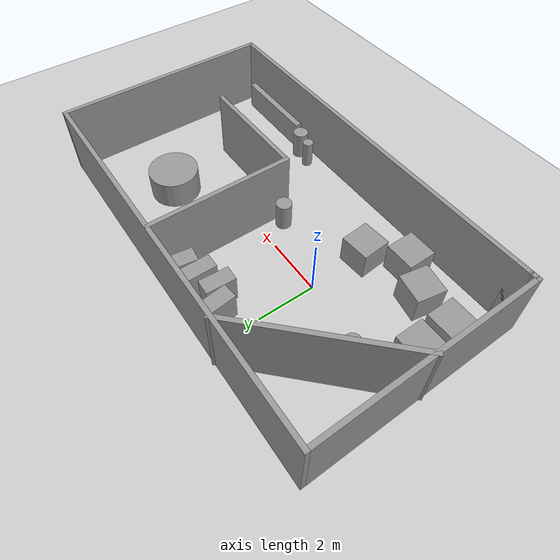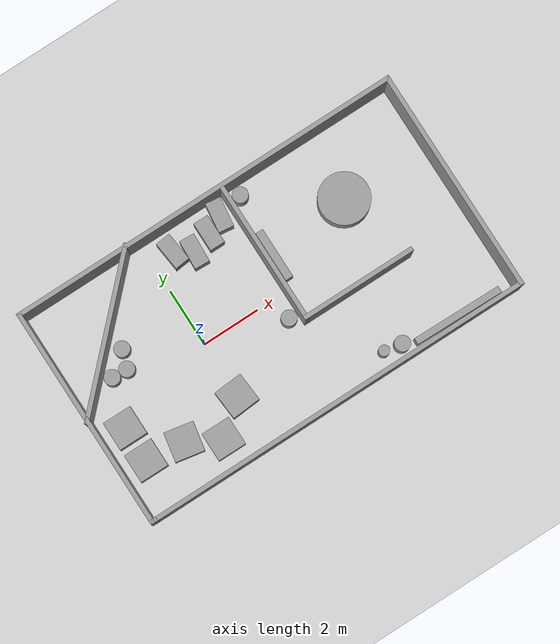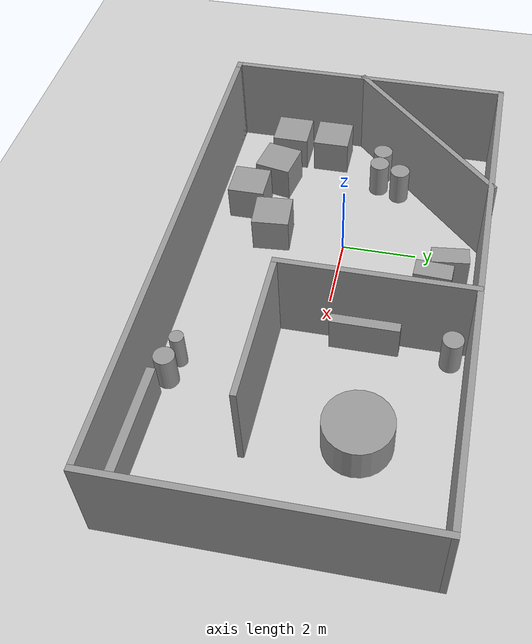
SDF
<sdf version="1.7">
 <world name="default">
  <light name="sun" type="directional">
   <pose>0 0 10 0 -0 0</pose>
   <diffuse>0.8 0.8 0.8 1</diffuse>
   <specular>0.2 0.2 0.2 1</specular>
   <attenuation>
    <range>1000</range>
    <constant>0.9</constant>
    <linear>0.01</linear>
    <quadratic>0.001</quadratic>
   </attenuation>
   <direction>-0.5 0.1 -0.9</direction>
   <spot><inner_angle>0</inner_angle><outer_angle>0</outer_angle><falloff>0</falloff></spot>
  </light>
  <model name="ground_plane">
   <static>1</static>
   <link name="link">
    <collision name="collision">
     <geometry><plane><normal>0 0 1</normal><size>100 100</size></plane></geometry>
     <surface>
      <contact><collide_bitmask>65535</collide_bitmask></contact>
      <friction><ode><mu>100</mu><mu2>50</mu2></ode></friction>
     </surface>
    </collision>
    <visual name="visual">
     <cast_shadows>0</cast_shadows>
     <geometry><plane><normal>0 0 1</normal><size>100 100</size></plane></geometry>
     <material>
      <script><uri>file://media/materials/scripts/gazebo.material</uri><name>Gazebo/Grey</name></script>
     </material>
    </visual>
   </link>
  </model>
  <gravity>0 0 -9.8</gravity>
  <magnetic_field>6e-06 2.3e-05 -4.2e-05</magnetic_field>
  <atmosphere type="adiabatic"/>
  <physics type="ode">
   <max_step_size>0.001</max_step_size>
   <real_time_factor>1</real_time_factor>
   <real_time_update_rate>1000</real_time_update_rate>
  </physics>
  <scene><ambient>0.4 0.4 0.4 1</ambient><background>0.7 0.7 0.7 1</background><shadows>1</shadows></scene>
  <spherical_coordinates>
   <surface_model>EARTH_WGS84</surface_model>
   <latitude_deg>0</latitude_deg>
   <longitude_deg>0</longitude_deg>
   <elevation>0</elevation>
   <heading_deg>0</heading_deg>
  </spherical_coordinates>
  <model name="Untitled">
   <pose>2.38903 -0.04105 0 0 -0 0</pose>
   <link name="Wall_10">
    <collision name="Wall_10_Collision">
     <geometry><box><size>5 0.15 2.5</size></box></geometry>
     <pose>0 0 1.25 0 -0 0</pose>
    </collision>
    <visual name="Wall_10_Visual">
     <pose>0 0 1.25 0 -0 0</pose>
     <geometry><box><size>5 0.15 2.5</size></box></geometry>
     <material>
      <script><uri>file://media/materials/scripts/gazebo.material</uri><name>Gazebo/Grey</name></script>
      <ambient>1 1 1 1</ambient>
     </material>
     <meta><layer>0</layer></meta>
    </visual>
    <pose>0.660432 1.31947 0 0 -0 -1.5708</pose>
   </link>
   <link name="Wall_13">
    <collision name="Wall_13_Collision">
     <geometry><box><size>4 0.15 2.5</size></box></geometry>
     <pose>0 0 1.25 0 -0 0</pose>
    </collision>
    <visual name="Wall_13_Visual">
     <pose>0 0 1.25 0 -0 0</pose>
     <geometry><box><size>4 0.15 2.5</size></box></geometry>
     <material>
      <script><uri>file://media/materials/scripts/gazebo.material</uri><name>Gazebo/Grey</name></script>
      <ambient>1 1 1 1</ambient>
     </material>
     <meta><layer>0</layer></meta>
    </visual>
    <pose>2.58543 -1.10553 0 0 -0 0</pose>
   </link>
   <link name="Wall_2">
    <collision name="Wall_2_Collision">
     <geometry><box><size>13.5 0.15 2.5</size></box></geometry>
     <pose>0 0 1.25 0 -0 0</pose>
    </collision>
    <visual name="Wall_2_Visual">
     <pose>0 0 1.25 0 -0 0</pose>
     <geometry><box><size>13.5 0.15 2.5</size></box></geometry>
     <material>
      <script><uri>file://media/materials/scripts/gazebo.material</uri><name>Gazebo/Grey</name></script>
      <ambient>1 1 1 1</ambient>
     </material>
     <meta><layer>0</layer></meta>
    </visual>
    <pose>0.155432 -3.83553 0 0 -0 0</pose>
   </link>
   <link name="Wall_3">
    <collision name="Wall_3_Collision">
     <geometry><box><size>7.75 0.15 2.5</size></box></geometry>
     <pose>0 0 1.25 0 -0 0</pose>
    </collision>
    <visual name="Wall_3_Visual">
     <pose>0 0 1.25 0 -0 0</pose>
     <geometry><box><size>7.75 0.15 2.5</size></box></geometry>
     <material>
      <script><uri>file://media/materials/scripts/gazebo.material</uri><name>Gazebo/Grey</name></script>
      <ambient>1 1 1 1</ambient>
     </material>
     <meta><layer>0</layer></meta>
    </visual>
    <pose>6.83043 -0.035533 0 0 -0 1.5708</pose>
   </link>
   <link name="Wall_4">
    <collision name="Wall_4_Collision">
     <geometry><box><size>13.75 0.15 2.5</size></box></geometry>
     <pose>0 0 1.25 0 -0 0</pose>
    </collision>
    <visual name="Wall_4_Visual">
     <pose>0 0 1.25 0 -0 0</pose>
     <geometry><box><size>13.75 0.15 2.5</size></box></geometry>
     <material>
      <script><uri>file://media/materials/scripts/gazebo.material</uri><name>Gazebo/Grey</name></script>
      <ambient>1 1 1 1</ambient>
     </material>
     <meta><layer>0</layer></meta>
    </visual>
    <pose>0.030432 3.76447 0 0 -0 3.14159</pose>
   </link>
   <link name="Wall_5">
    <collision name="Wall_5_Collision">
     <geometry><box><size>7.75 0.15 2.5</size></box></geometry>
     <pose>0 0 1.25 0 -0 0</pose>
    </collision>
    <visual name="Wall_5_Visual">
     <pose>0 0 1.25 0 -0 0</pose>
     <geometry><box><size>7.75 0.15 2.5</size></box></geometry>
     <material>
      <script><uri>file://media/materials/scripts/gazebo.material</uri><name>Gazebo/Grey</name></script>
      <ambient>1 1 1 1</ambient>
     </material>
     <meta><layer>0</layer></meta>
    </visual>
    <pose>-6.76957 -0.035533 0 0 -0 -1.5708</pose>
   </link>
   <link name="Wall_6">
    <collision name="Wall_6_Collision">
     <geometry><box><size>0.75 0.15 2.5</size></box></geometry>
     <pose>0 0 1.25 0 -0 0</pose>
    </collision>
    <visual name="Wall_6_Visual">
     <pose>0 0 1.25 0 -0 0</pose>
     <geometry><box><size>0.75 0.15 2.5</size></box></geometry>
     <material>
      <script><uri>file://media/materials/scripts/gazebo.material</uri><name>Gazebo/Grey</name></script>
      <ambient>1 1 1 1</ambient>
     </material>
     <meta><layer>0</layer></meta>
    </visual>
    <pose>-6.46957 -3.83553 0 0 -0 0</pose>
   </link>
   <link name="Wall_8">
    <collision name="Wall_8_Collision">
     <geometry><box><size>5.75 0.15 2.5</size></box></geometry>
     <pose>0 0 1.25 0 -0 0</pose>
    </collision>
    <visual name="Wall_8_Visual">
     <pose>0 0 1.25 0 -0 0</pose>
     <geometry><box><size>5.75 0.15 2.5</size></box></geometry>
     <material>
      <script><uri>file://media/materials/scripts/gazebo.material</uri><name>Gazebo/Grey</name></script>
      <ambient>1 1 1 1</ambient>
     </material>
     <meta><layer>0</layer></meta>
    </visual>
    <pose>-4.81947 1.82457 0 0 -0 -2.35619</pose>
   </link>
   <static>1</static>
  </model>
  <model name="unit_box">
   <pose>-3.53946 -0.919895 0.499995 -1e-05 -0 -0</pose>
   <link name="link">
    <inertial>
     <mass>1</mass>
     <inertia>
      <ixx>0.166667</ixx>
      <ixy>0</ixy>
      <ixz>0</ixz>
      <iyy>0.166667</iyy>
      <iyz>0</iyz>
      <izz>0.166667</izz>
     </inertia>
    </inertial>
    <collision name="collision"><geometry><box><size>1 1 1</size></box></geometry></collision>
    <visual name="visual">
     <geometry><box><size>1 1 1</size></box></geometry>
     <material>
      <script><name>Gazebo/Grey</name><uri>file://media/materials/scripts/gazebo.material</uri></script>
     </material>
    </visual>
   </link>
  </model>
  <model name="unit_box_0">
   <pose>-3.53308 -2.12592 0.499995 0 1e-05 0</pose>
   <link name="link">
    <inertial>
     <mass>1</mass>
     <inertia>
      <ixx>0.166667</ixx>
      <ixy>0</ixy>
      <ixz>0</ixz>
      <iyy>0.166667</iyy>
      <iyz>0</iyz>
      <izz>0.166667</izz>
     </inertia>
    </inertial>
    <collision name="collision"><geometry><box><size>1 1 1</size></box></geometry></collision>
    <visual name="visual">
     <geometry><box><size>1 1 1</size></box></geometry>
     <material>
      <script><name>Gazebo/Grey</name><uri>file://media/materials/scripts/gazebo.material</uri></script>
     </material>
    </visual>
   </link>
  </model>
  <model name="unit_box_1">
   <pose>-2.21328 -2.28076 0.499995 1e-05 -0 -0.184325</pose>
   <link name="link">
    <inertial>
     <mass>1</mass>
     <inertia>
      <ixx>0.166667</ixx>
      <ixy>0</ixy>
      <ixz>0</ixz>
      <iyy>0.166667</iyy>
      <iyz>0</iyz>
      <izz>0.166667</izz>
     </inertia>
    </inertial>
    <collision name="collision"><geometry><box><size>1 1 1</size></box></geometry></collision>
    <visual name="visual">
     <geometry><box><size>1 1 1</size></box></geometry>
     <material>
      <script><name>Gazebo/Grey</name><uri>file://media/materials/scripts/gazebo.material</uri></script>
     </material>
    </visual>
   </link>
  </model>
  <model name="unit_box_2">
   <pose>-1.12407 -2.87751 0.499995 0 1e-05 0</pose>
   <link name="link">
    <inertial>
     <mass>1</mass>
     <inertia>
      <ixx>0.166667</ixx>
      <ixy>0</ixy>
      <ixz>0</ixz>
      <iyy>0.166667</iyy>
      <iyz>0</iyz>
      <izz>0.166667</izz>
     </inertia>
    </inertial>
    <collision name="collision"><geometry><box><size>1 1 1</size></box></geometry></collision>
    <visual name="visual">
     <geometry><box><size>1 1 1</size></box></geometry>
     <material>
      <script><name>Gazebo/Grey</name><uri>file://media/materials/scripts/gazebo.material</uri></script>
     </material>
    </visual>
   </link>
  </model>
  <model name="unit_box_3">
   <pose>-0.050352 -1.979 0.5 0 -0 0.075767</pose>
   <link name="link">
    <inertial>
     <mass>1</mass>
     <inertia>
      <ixx>0.166667</ixx>
      <ixy>0</ixy>
      <ixz>0</ixz>
      <iyy>0.166667</iyy>
      <iyz>0</iyz>
      <izz>0.166667</izz>
     </inertia>
    </inertial>
    <collision name="collision"><geometry><box><size>1 1 1</size></box></geometry></collision>
    <visual name="visual">
     <geometry><box><size>1 1 1</size></box></geometry>
     <material>
      <script><name>Gazebo/Grey</name><uri>file://media/materials/scripts/gazebo.material</uri></script>
     </material>
    </visual>
   </link>
  </model>
  <model name="unit_cylinder">
   <pose>6.15876 1.41936 0.499995 5e-06 5e-06 -1e-06</pose>
   <link name="link">
    <inertial>
     <mass>1</mass>
     <inertia><ixx>0.145833</ixx><ixy>0</ixy><ixz>0</ixz><iyy>0.145833</iyy><iyz>0</iyz><izz>0.125</izz></inertia>
    </inertial>
    <collision name="collision">
     <geometry><cylinder><radius>0.8566</radius><length>1</length></cylinder></geometry>
    </collision>
    <visual name="visual">
     <geometry><cylinder><radius>0.8566</radius><length>1</length></cylinder></geometry>
     <material>
      <script><name>Gazebo/Grey</name><uri>file://media/materials/scripts/gazebo.material</uri></script>
     </material>
    </visual>
   </link>
  </model>
  <model name="unit_box_4">
   <pose>1.29531 2.57515 0.5 0 -0 -0.047638</pose>
   <link name="link">
    <inertial>
     <mass>1</mass>
     <inertia>
      <ixx>0.166667</ixx>
      <ixy>0</ixy>
      <ixz>0</ixz>
      <iyy>0.166667</iyy>
      <iyz>0</iyz>
      <izz>0.166667</izz>
     </inertia>
    </inertial>
    <collision name="collision"><geometry><box><size>0.520195 1 1</size></box></geometry></collision>
    <visual name="visual">
     <geometry><box><size>0.520195 1 1</size></box></geometry>
     <material>
      <script><name>Gazebo/Grey</name><uri>file://media/materials/scripts/gazebo.material</uri></script>
     </material>
    </visual>
   </link>
  </model>
  <model name="unit_box_4_clone">
   <pose>2.57885 3.11133 0.5 0 -0 -0.128343</pose>
   <link name="link">
    <inertial>
     <mass>1</mass>
     <inertia>
      <ixx>0.166667</ixx>
      <ixy>0</ixy>
      <ixz>0</ixz>
      <iyy>0.166667</iyy>
      <iyz>0</iyz>
      <izz>0.166667</izz>
     </inertia>
    </inertial>
    <collision name="collision"><geometry><box><size>0.520195 1 1</size></box></geometry></collision>
    <visual name="visual">
     <geometry><box><size>0.520195 1 1</size></box></geometry>
     <material>
      <script><name>Gazebo/Grey</name><uri>file://media/materials/scripts/gazebo.material</uri></script>
     </material>
    </visual>
   </link>
  </model>
  <model name="unit_box_4_clone_0">
   <pose>1.99515 2.81349 0.5 0 -0 0</pose>
   <link name="link">
    <inertial>
     <mass>1</mass>
     <inertia>
      <ixx>0.166667</ixx>
      <ixy>0</ixy>
      <ixz>0</ixz>
      <iyy>0.166667</iyy>
      <iyz>0</iyz>
      <izz>0.166667</izz>
     </inertia>
    </inertial>
    <collision name="collision"><geometry><box><size>0.520195 1 1</size></box></geometry></collision>
    <visual name="visual">
     <geometry><box><size>0.520195 1 1</size></box></geometry>
     <material>
      <script><name>Gazebo/Grey</name><uri>file://media/materials/scripts/gazebo.material</uri></script>
     </material>
    </visual>
   </link>
  </model>
  <model name="unit_box_4_clone_1">
   <pose>0.716017 2.94618 0.5 0 -0 0.111814</pose>
   <link name="link">
    <inertial>
     <mass>1</mass>
     <inertia>
      <ixx>0.166667</ixx>
      <ixy>0</ixy>
      <ixz>0</ixz>
      <iyy>0.166667</iyy>
      <iyz>0</iyz>
      <izz>0.166667</izz>
     </inertia>
    </inertial>
    <collision name="collision"><geometry><box><size>0.520195 1 1</size></box></geometry></collision>
    <visual name="visual">
     <geometry><box><size>0.520195 1 1</size></box></geometry>
     <material>
      <script><name>Gazebo/Grey</name><uri>file://media/materials/scripts/gazebo.material</uri></script>
     </material>
    </visual>
   </link>
  </model>
  <model name="unit_cylinder_0">
   <pose>-2.49159 0.611293 0.499992 1e-06 -1e-06 0.000279</pose>
   <link name="link">
    <inertial>
     <mass>1</mass>
     <inertia><ixx>0.145833</ixx><ixy>0</ixy><ixz>0</ixz><iyy>0.145833</iyy><iyz>0</iyz><izz>0.125</izz></inertia>
    </inertial>
    <collision name="collision">
     <geometry><cylinder><radius>0.26626</radius><length>1</length></cylinder></geometry>
    </collision>
    <visual name="visual">
     <geometry><cylinder><radius>0.26626</radius><length>1</length></cylinder></geometry>
     <material>
      <script><name>Gazebo/Grey</name><uri>file://media/materials/scripts/gazebo.material</uri></script>
     </material>
    </visual>
   </link>
  </model>
  <model name="unit_cylinder_0_clone">
   <pose>-2.28142 1.22516 0.499999 -0 -0 -0</pose>
   <link name="link">
    <inertial>
     <mass>1</mass>
     <inertia><ixx>0.145833</ixx><ixy>0</ixy><ixz>0</ixz><iyy>0.145833</iyy><iyz>0</iyz><izz>0.125</izz></inertia>
    </inertial>
    <collision name="collision">
     <geometry><cylinder><radius>0.26626</radius><length>1</length></cylinder></geometry>
    </collision>
    <visual name="visual">
     <geometry><cylinder><radius>0.26626</radius><length>1</length></cylinder></geometry>
     <material>
      <script><name>Gazebo/Grey</name><uri>file://media/materials/scripts/gazebo.material</uri></script>
     </material>
    </visual>
   </link>
  </model>
  <model name="unit_cylinder_0_clone_0">
   <pose>-3.02369 0.634354 0.499994 -0 -0 -5.7e-05</pose>
   <link name="link">
    <inertial>
     <mass>1</mass>
     <inertia><ixx>0.145833</ixx><ixy>0</ixy><ixz>0</ixz><iyy>0.145833</iyy><iyz>0</iyz><izz>0.125</izz></inertia>
    </inertial>
    <collision name="collision">
     <geometry><cylinder><radius>0.26626</radius><length>1</length></cylinder></geometry>
    </collision>
    <visual name="visual">
     <geometry><cylinder><radius>0.26626</radius><length>1</length></cylinder></geometry>
     <material>
      <script><name>Gazebo/Grey</name><uri>file://media/materials/scripts/gazebo.material</uri></script>
     </material>
    </visual>
   </link>
  </model>
  <model name="unit_cylinder_0_clone_1">
   <pose>3.46565 3.28806 0.499998 -1e-06 1e-06 0.000279</pose>
   <link name="link">
    <inertial>
     <mass>1</mass>
     <inertia><ixx>0.145833</ixx><ixy>0</ixy><ixz>0</ixz><iyy>0.145833</iyy><iyz>0</iyz><izz>0.125</izz></inertia>
    </inertial>
    <collision name="collision">
     <geometry><cylinder><radius>0.26626</radius><length>1</length></cylinder></geometry>
    </collision>
    <visual name="visual">
     <geometry><cylinder><radius>0.26626</radius><length>1</length></cylinder></geometry>
     <material>
      <script><name>Gazebo/Grey</name><uri>file://media/materials/scripts/gazebo.material</uri></script>
     </material>
    </visual>
   </link>
  </model>
  <model name="unit_cylinder_0_clone_2">
   <pose>2.65149 -0.805405 0.499992 2e-06 -1e-06 0.000279</pose>
   <link name="link">
    <inertial>
     <mass>1</mass>
     <inertia><ixx>0.145833</ixx><ixy>0</ixy><ixz>0</ixz><iyy>0.145833</iyy><iyz>0</iyz><izz>0.125</izz></inertia>
    </inertial>
    <collision name="collision">
     <geometry><cylinder><radius>0.26626</radius><length>1</length></cylinder></geometry>
    </collision>
    <visual name="visual">
     <geometry><cylinder><radius>0.26626</radius><length>1</length></cylinder></geometry>
     <material>
      <script><name>Gazebo/Grey</name><uri>file://media/materials/scripts/gazebo.material</uri></script>
     </material>
    </visual>
   </link>
  </model>
  <model name="unit_box_5">
   <pose>3.3382 1.11703 0.499995 -5e-06 -0 -0.000423</pose>
   <link name="link">
    <inertial>
     <mass>1</mass>
     <inertia>
      <ixx>0.166667</ixx>
      <ixy>0</ixy>
      <ixz>0</ixz>
      <iyy>0.166667</iyy>
      <iyz>0</iyz>
      <izz>0.166667</izz>
     </inertia>
    </inertial>
    <collision name="collision"><geometry><box><size>0.265614 1.76117 1</size></box></geometry></collision>
    <visual name="visual">
     <geometry><box><size>0.265614 1.76117 1</size></box></geometry>
     <material>
      <script><name>Gazebo/Grey</name><uri>file://media/materials/scripts/gazebo.material</uri></script>
     </material>
    </visual>
   </link>
  </model>
  <model name="unit_box_6">
   <pose>7.15463 -3.6112 0.49979 5e-06 -0.000136 -0.013301</pose>
   <link name="link">
    <inertial>
     <mass>1</mass>
     <inertia>
      <ixx>0.166667</ixx>
      <ixy>0</ixy>
      <ixz>0</ixz>
      <iyy>0.166667</iyy>
      <iyz>0</iyz>
      <izz>0.166667</izz>
     </inertia>
    </inertial>
    <collision name="collision"><geometry><box><size>3.10923 0.22544 1</size></box></geometry></collision>
    <visual name="visual">
     <geometry><box><size>3.10923 0.22544 1</size></box></geometry>
     <material>
      <script><name>Gazebo/Grey</name><uri>file://media/materials/scripts/gazebo.material</uri></script>
     </material>
    </visual>
   </link>
  </model>
  <model name="unit_cylinder_0_clone_2_clone">
   <pose>5.20792 -3.40691 0.499992 1e-06 -1e-06 0.000279</pose>
   <link name="link">
    <inertial>
     <mass>1</mass>
     <inertia><ixx>0.145833</ixx><ixy>0</ixy><ixz>0</ixz><iyy>0.145833</iyy><iyz>0</iyz><izz>0.125</izz></inertia>
    </inertial>
    <collision name="collision">
     <geometry><cylinder><radius>0.26626</radius><length>1</length></cylinder></geometry>
    </collision>
    <visual name="visual">
     <geometry><cylinder><radius>0.26626</radius><length>1</length></cylinder></geometry>
     <material>
      <script><name>Gazebo/Grey</name><uri>file://media/materials/scripts/gazebo.material</uri></script>
     </material>
    </visual>
   </link>
  </model>
  <model name="unit_cylinder_0_clone_2_clone_0">
   <pose>4.60264 -3.28571 0.499999 0 -0 0.000278</pose>
   <link name="link">
    <inertial>
     <mass>1</mass>
     <inertia><ixx>0.145833</ixx><ixy>0</ixy><ixz>0</ixz><iyy>0.145833</iyy><iyz>0</iyz><izz>0.125</izz></inertia>
    </inertial>
    <collision name="collision">
     <geometry><cylinder><radius>0.185143</radius><length>1</length></cylinder></geometry>
    </collision>
    <visual name="visual">
     <geometry><cylinder><radius>0.185143</radius><length>1</length></cylinder></geometry>
     <material>
      <script><name>Gazebo/Grey</name><uri>file://media/materials/scripts/gazebo.material</uri></script>
     </material>
    </visual>
   </link>
  </model>
 </world>
</sdf>
